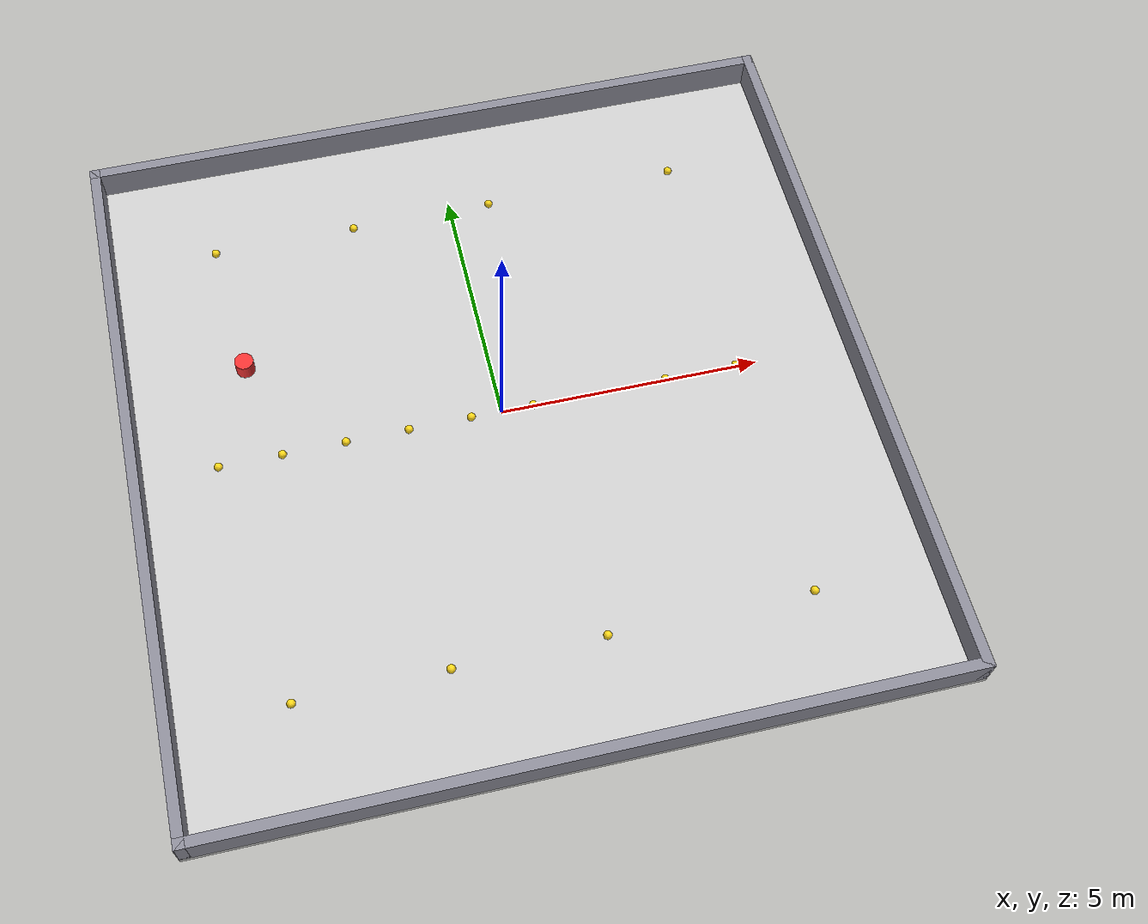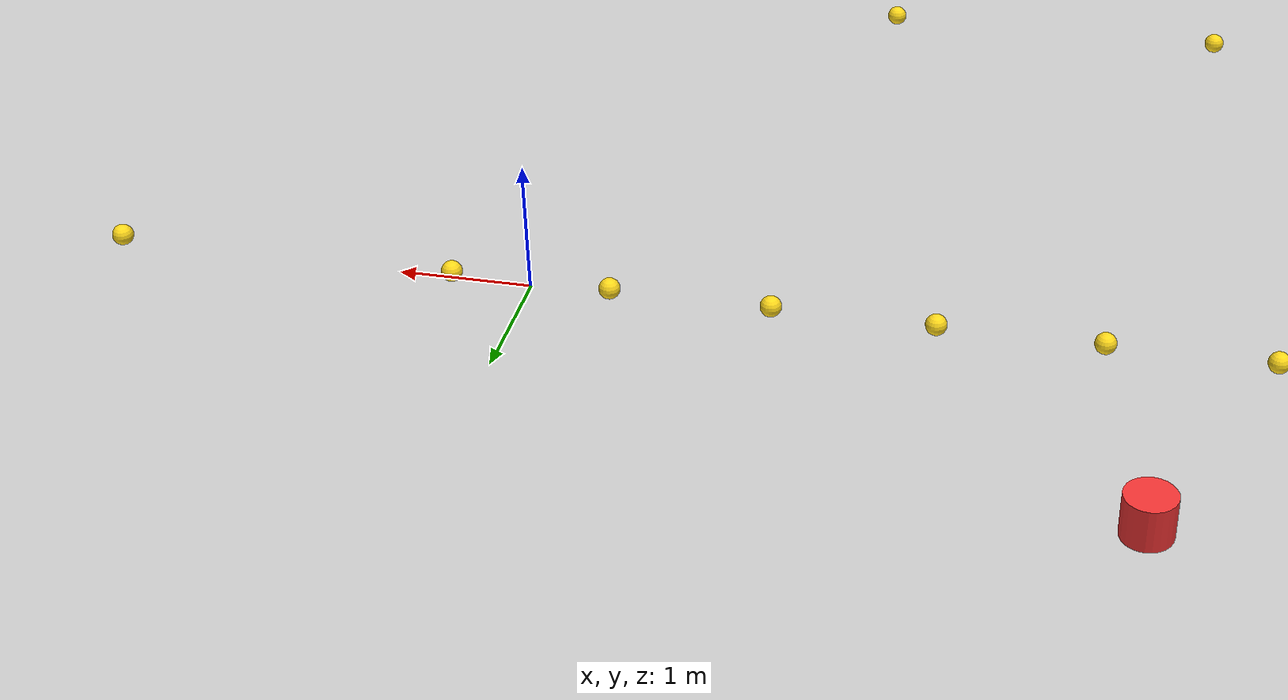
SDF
<?xml version="1.0"?>
<sdf version="1.10">
  <world name="phase2_pacman_world">
    <gravity>0 0 -9.8</gravity>

    <plugin filename="gz-sim-physics-system" name="gz::sim::systems::Physics"/>
    <plugin filename="gz-sim-user-commands-system" name="gz::sim::systems::UserCommands"/>
    <plugin filename="gz-sim-scene-broadcaster-system" name="gz::sim::systems::SceneBroadcaster"/>
    <plugin filename="gz-sim-sensors-system" name="gz::sim::systems::Sensors">
      <render_engine>ogre2</render_engine>
    </plugin>

    <scene>
      <ambient>0.7 0.7 0.7 1.0</ambient>
      <background>0.95 0.95 0.98 1.0</background>
    </scene>

    <light name="sun" type="directional">
      <cast_shadows>true</cast_shadows>
      <pose>0 0 10 0 0 0</pose>
      <diffuse>0.9 0.9 0.9 1</diffuse>
      <specular>0.2 0.2 0.2 1</specular>
      <direction>-0.5 0.2 -1</direction>
    </light>

    <model name="floor">
      <static>true</static>
      <link name="floor_link">
        <collision name="floor_collision">
          <geometry><box><size>14 14 0.1</size></box></geometry>
        </collision>
        <visual name="floor_visual">
          <geometry><box><size>14 14 0.1</size></box></geometry>
          <material>
            <ambient>0.8 0.8 0.8 1</ambient>
            <diffuse>0.8 0.8 0.8 1</diffuse>
          </material>
        </visual>
      </link>
      <pose>0 0 -0.05 0 0 0</pose>
    </model>

    <model name="north_wall">
      <static>true</static>
      <link name="north_wall_link">
        <collision name="collision"><geometry><box><size>14 0.2 0.6</size></box></geometry></collision>
        <visual name="visual"><geometry><box><size>14 0.2 0.6</size></box></geometry><material><ambient>0.55 0.55 0.6 1</ambient><diffuse>0.55 0.55 0.6 1</diffuse></material></visual>
      </link>
      <pose>0 6.9 0.3 0 0 0</pose>
    </model>

    <model name="south_wall">
      <static>true</static>
      <link name="south_wall_link">
        <collision name="collision"><geometry><box><size>14 0.2 0.6</size></box></geometry></collision>
        <visual name="visual"><geometry><box><size>14 0.2 0.6</size></box></geometry><material><ambient>0.55 0.55 0.6 1</ambient><diffuse>0.55 0.55 0.6 1</diffuse></material></visual>
      </link>
      <pose>0 -6.9 0.3 0 0 0</pose>
    </model>

    <model name="east_wall">
      <static>true</static>
      <link name="east_wall_link">
        <collision name="collision"><geometry><box><size>0.2 14 0.6</size></box></geometry></collision>
        <visual name="visual"><geometry><box><size>0.2 14 0.6</size></box></geometry><material><ambient>0.55 0.55 0.6 1</ambient><diffuse>0.55 0.55 0.6 1</diffuse></material></visual>
      </link>
      <pose>6.9 0 0.3 0 0 0</pose>
    </model>

    <model name="west_wall">
      <static>true</static>
      <link name="west_wall_link">
        <collision name="collision"><geometry><box><size>0.2 14 0.6</size></box></geometry></collision>
        <visual name="visual"><geometry><box><size>0.2 14 0.6</size></box></geometry><material><ambient>0.55 0.55 0.6 1</ambient><diffuse>0.55 0.55 0.6 1</diffuse></material></visual>
      </link>
      <pose>-6.9 0 0.3 0 0 0</pose>
    </model>

    <include><name>pellet_0</name><uri>model://pellet_simple</uri><pose>-5.4 0.0 0.06 0 0 0</pose></include>
    <include><name>pellet_1</name><uri>model://pellet_simple</uri><pose>-4.2 0.0 0.06 0 0 0</pose></include>
    <include><name>pellet_2</name><uri>model://pellet_simple</uri><pose>-3.0 0.0 0.06 0 0 0</pose></include>
    <include><name>pellet_3</name><uri>model://pellet_simple</uri><pose>-1.8 0.0 0.06 0 0 0</pose></include>
    <include><name>pellet_4</name><uri>model://pellet_simple</uri><pose>-0.6 0.0 0.06 0 0 0</pose></include>
    <include><name>pellet_5</name><uri>model://pellet_simple</uri><pose>0.6 0.0 0.06 0 0 0</pose></include>
    <include><name>pellet_6</name><uri>model://pellet_simple</uri><pose>3.2 0.0 0.06 0 0 0</pose></include>
    <include><name>pellet_7</name><uri>model://pellet_simple</uri><pose>4.6 0.0 0.06 0 0 0</pose></include>
    <include><name>pellet_8</name><uri>model://pellet_simple</uri><pose>-4.8 4.8 0.06 0 0 0</pose></include>
    <include><name>pellet_9</name><uri>model://pellet_simple</uri><pose>-2.0 4.8 0.06 0 0 0</pose></include>
    <include><name>pellet_10</name><uri>model://pellet_simple</uri><pose>0.8 4.8 0.06 0 0 0</pose></include>
    <include><name>pellet_11</name><uri>model://pellet_simple</uri><pose>4.6 4.8 0.06 0 0 0</pose></include>
    <include><name>pellet_12</name><uri>model://pellet_simple</uri><pose>-4.8 -4.8 0.06 0 0 0</pose></include>
    <include><name>pellet_13</name><uri>model://pellet_simple</uri><pose>-2.0 -4.8 0.06 0 0 0</pose></include>
    <include><name>pellet_14</name><uri>model://pellet_simple</uri><pose>0.8 -4.8 0.06 0 0 0</pose></include>
    <include><name>pellet_15</name><uri>model://pellet_simple</uri><pose>4.6 -4.8 0.06 0 0 0</pose></include>

    <include><name>ghost_0</name><uri>model://ghost_simple</uri><pose>-4.6 2.0 0.18 0 0 0</pose></include>
  </world>
</sdf>

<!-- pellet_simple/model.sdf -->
<sdf version="1.10">
  <model name="pellet_simple">
    <static>false</static>
    <link name="link">
      <gravity>false</gravity>
      <collision name="collision">
        <geometry>
          <sphere>
            <radius>0.08</radius>
          </sphere>
        </geometry>
      </collision>
      <visual name="visual">
        <geometry>
          <sphere>
            <radius>0.08</radius>
          </sphere>
        </geometry>
        <material>
          <ambient>1.0 0.85 0.1 1.0</ambient>
          <diffuse>1.0 0.85 0.1 1.0</diffuse>
        </material>
      </visual>
    </link>
  </model>
</sdf>

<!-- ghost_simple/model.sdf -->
<sdf version="1.10">
  <model name="ghost_simple">
    <static>false</static>
    <link name="link">
      <gravity>false</gravity>
      <collision name="collision">
        <geometry>
          <cylinder>
            <radius>0.18</radius>
            <length>0.32</length>
          </cylinder>
        </geometry>
      </collision>
      <visual name="visual">
        <geometry>
          <cylinder>
            <radius>0.18</radius>
            <length>0.32</length>
          </cylinder>
        </geometry>
        <material>
          <ambient>0.95 0.20 0.20 1.0</ambient>
          <diffuse>0.95 0.20 0.20 1.0</diffuse>
        </material>
      </visual>
    </link>
  </model>
</sdf>
